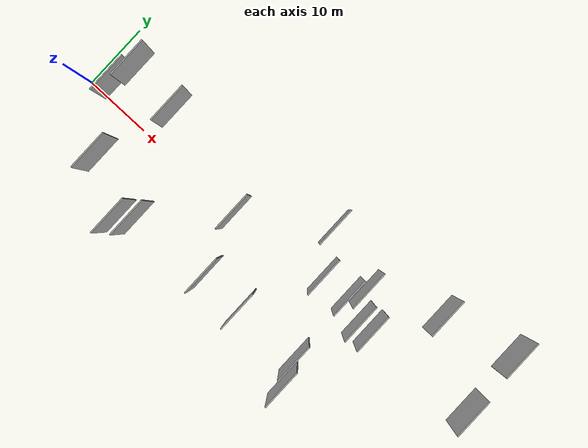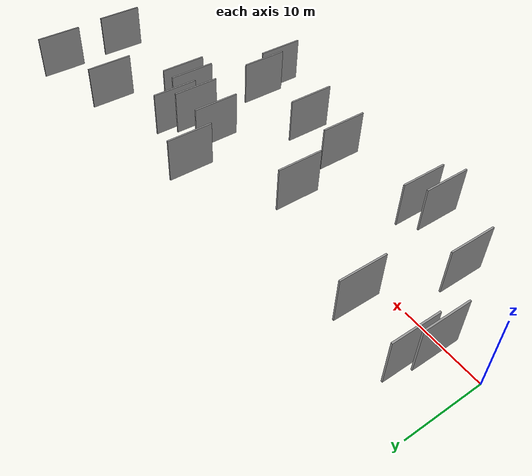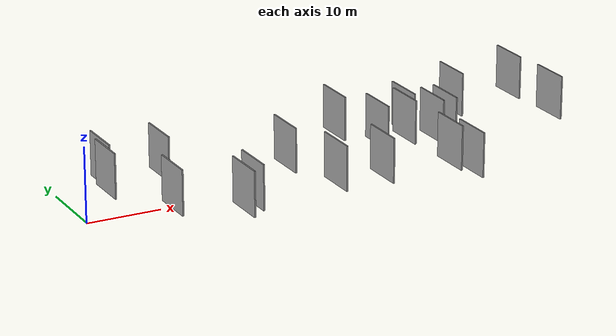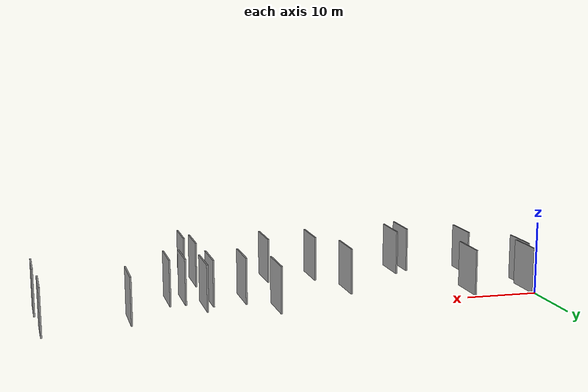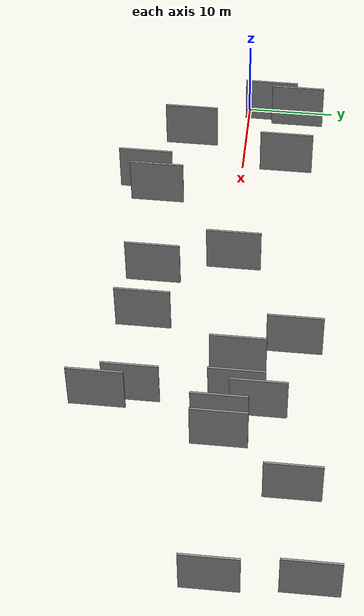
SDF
<sdf version="1.6">
 <world name="default">
  <scene>
   <sky><clouds><speed>12</speed></clouds></sky>
   <ambient>0.4 0.4 0.4 1</ambient>
   <background>0.7 0.7 0.7 1</background>
   <shadows>1</shadows>
  </scene>
  <gravity>0 0 -9.8066</gravity>
  <magnetic_field>6e-06 2.3e-05 -4.2e-05</magnetic_field>
  <physics default="0" name="default_physics" type="ode">
   <ode>
    <solver>
     <type>quick</type>
     <iters>10</iters>
     <sor>1.0</sor>
     <use_dynamic_moi_rescaling>0</use_dynamic_moi_rescaling>
    </solver>
    <constraints>
     <cfm>0</cfm>
     <erp>0.2</erp>
     <contact_max_correcting_vel>100</contact_max_correcting_vel>
     <contact_surface_layer>0.001</contact_surface_layer>
    </constraints>
   </ode>
   <max_step_size>0.004</max_step_size>
   <real_time_factor>1</real_time_factor>
   <real_time_update_rate>250</real_time_update_rate>
  </physics>
  <light name="sun" type="directional">
   <pose>0 0 10 0 0 0</pose>
   <diffuse>0.8 0.8 0.8 1</diffuse>
   <specular>0.2 0.2 0.2 1</specular>
   <attenuation>
    <range>1000</range>
    <constant>0.9</constant>
    <linear>0.01</linear>
    <quadratic>0.001</quadratic>
   </attenuation>
   <direction>-0.5 0.1 -0.9</direction>
  </light>
  <model name="grey_wall_1">
   <static>1</static>
   <pose>38.8019 8.1428 2.5 0.000000 0.000000 1.570796</pose>
   <link name="link">
    <pose>0 0 3.00 0 0 0</pose>
    <collision name="collision"><geometry><box><size>6.00 0.2 6.00</size></box></geometry></collision>
    <visual name="visual">
     <cast_shadows>0</cast_shadows>
     <geometry><box><size>6.00 0.2 6.00</size></box></geometry>
     <material>
      <script>
       <uri>model://grey_wall/materials/scripts</uri>
       <uri>model://grey_wall/materials/textures</uri>
       <name>vrc/grey_wall</name>
      </script>
     </material>
    </visual>
   </link>
  </model>
  <model name="grey_wall_2">
   <static>1</static>
   <pose>67.8202 11.7239 2.5 0.000000 0.000000 1.570796</pose>
   <link name="link">
    <pose>0 0 3.00 0 0 0</pose>
    <collision name="collision"><geometry><box><size>6.00 0.2 6.00</size></box></geometry></collision>
    <visual name="visual">
     <cast_shadows>0</cast_shadows>
     <geometry><box><size>6.00 0.2 6.00</size></box></geometry>
     <material>
      <script>
       <uri>model://grey_wall/materials/scripts</uri>
       <uri>model://grey_wall/materials/textures</uri>
       <name>vrc/grey_wall</name>
      </script>
     </material>
    </visual>
   </link>
  </model>
  <model name="grey_wall_3">
   <static>1</static>
   <pose>27.6856 0.5977 2.5 0.000000 0.000000 1.570796</pose>
   <link name="link">
    <pose>0 0 3.00 0 0 0</pose>
    <collision name="collision"><geometry><box><size>6.00 0.2 6.00</size></box></geometry></collision>
    <visual name="visual">
     <cast_shadows>0</cast_shadows>
     <geometry><box><size>6.00 0.2 6.00</size></box></geometry>
     <material>
      <script>
       <uri>model://grey_wall/materials/scripts</uri>
       <uri>model://grey_wall/materials/textures</uri>
       <name>vrc/grey_wall</name>
      </script>
     </material>
    </visual>
   </link>
  </model>
  <model name="grey_wall_4">
   <static>1</static>
   <pose>46.6783 -8.3228 2.5 0.000000 0.000000 1.570796</pose>
   <link name="link">
    <pose>0 0 3.00 0 0 0</pose>
    <collision name="collision"><geometry><box><size>6.00 0.2 6.00</size></box></geometry></collision>
    <visual name="visual">
     <cast_shadows>0</cast_shadows>
     <geometry><box><size>6.00 0.2 6.00</size></box></geometry>
     <material>
      <script>
       <uri>model://grey_wall/materials/scripts</uri>
       <uri>model://grey_wall/materials/textures</uri>
       <name>vrc/grey_wall</name>
      </script>
     </material>
    </visual>
   </link>
  </model>
  <model name="grey_wall_5">
   <static>1</static>
   <pose>8.8817 -6.0696 2.5 0.000000 0.000000 1.570796</pose>
   <link name="link">
    <pose>0 0 3.00 0 0 0</pose>
    <collision name="collision"><geometry><box><size>6.00 0.2 6.00</size></box></geometry></collision>
    <visual name="visual">
     <cast_shadows>0</cast_shadows>
     <geometry><box><size>6.00 0.2 6.00</size></box></geometry>
     <material>
      <script>
       <uri>model://grey_wall/materials/scripts</uri>
       <uri>model://grey_wall/materials/textures</uri>
       <name>vrc/grey_wall</name>
      </script>
     </material>
    </visual>
   </link>
  </model>
  <model name="grey_wall_6">
   <static>1</static>
   <pose>12.2418 5.2225 2.5 0.000000 0.000000 1.570796</pose>
   <link name="link">
    <pose>0 0 3.00 0 0 0</pose>
    <collision name="collision"><geometry><box><size>6.00 0.2 6.00</size></box></geometry></collision>
    <visual name="visual">
     <cast_shadows>0</cast_shadows>
     <geometry><box><size>6.00 0.2 6.00</size></box></geometry>
     <material>
      <script>
       <uri>model://grey_wall/materials/scripts</uri>
       <uri>model://grey_wall/materials/textures</uri>
       <name>vrc/grey_wall</name>
      </script>
     </material>
    </visual>
   </link>
  </model>
  <model name="grey_wall_7">
   <static>1</static>
   <pose>3.9170 2.8404 2.5 0.000000 0.000000 1.570796</pose>
   <link name="link">
    <pose>0 0 3.00 0 0 0</pose>
    <collision name="collision"><geometry><box><size>6.00 0.2 6.00</size></box></geometry></collision>
    <visual name="visual">
     <cast_shadows>0</cast_shadows>
     <geometry><box><size>6.00 0.2 6.00</size></box></geometry>
     <material>
      <script>
       <uri>model://grey_wall/materials/scripts</uri>
       <uri>model://grey_wall/materials/textures</uri>
       <name>vrc/grey_wall</name>
      </script>
     </material>
    </visual>
   </link>
  </model>
  <model name="grey_wall_8">
   <static>1</static>
   <pose>68.2535 2.0715 2.5 0.000000 0.000000 1.570796</pose>
   <link name="link">
    <pose>0 0 3.00 0 0 0</pose>
    <collision name="collision"><geometry><box><size>6.00 0.2 6.00</size></box></geometry></collision>
    <visual name="visual">
     <cast_shadows>0</cast_shadows>
     <geometry><box><size>6.00 0.2 6.00</size></box></geometry>
     <material>
      <script>
       <uri>model://grey_wall/materials/scripts</uri>
       <uri>model://grey_wall/materials/textures</uri>
       <name>vrc/grey_wall</name>
      </script>
     </material>
    </visual>
   </link>
  </model>
  <model name="grey_wall_9">
   <static>1</static>
   <pose>36.8243 -8.3083 2.5 0.000000 0.000000 1.570796</pose>
   <link name="link">
    <pose>0 0 3.00 0 0 0</pose>
    <collision name="collision"><geometry><box><size>6.00 0.2 6.00</size></box></geometry></collision>
    <visual name="visual">
     <cast_shadows>0</cast_shadows>
     <geometry><box><size>6.00 0.2 6.00</size></box></geometry>
     <material>
      <script>
       <uri>model://grey_wall/materials/scripts</uri>
       <uri>model://grey_wall/materials/textures</uri>
       <name>vrc/grey_wall</name>
      </script>
     </material>
    </visual>
   </link>
  </model>
  <model name="grey_wall_10">
   <static>1</static>
   <pose>47.4307 5.0204 2.5 0.000000 0.000000 1.570796</pose>
   <link name="link">
    <pose>0 0 3.00 0 0 0</pose>
    <collision name="collision"><geometry><box><size>6.00 0.2 6.00</size></box></geometry></collision>
    <visual name="visual">
     <cast_shadows>0</cast_shadows>
     <geometry><box><size>6.00 0.2 6.00</size></box></geometry>
     <material>
      <script>
       <uri>model://grey_wall/materials/scripts</uri>
       <uri>model://grey_wall/materials/textures</uri>
       <name>vrc/grey_wall</name>
      </script>
     </material>
    </visual>
   </link>
  </model>
  <model name="grey_wall_11">
   <static>1</static>
   <pose>42.0297 2.3910 2.5 0.000000 0.000000 1.570796</pose>
   <link name="link">
    <pose>0 0 3.00 0 0 0</pose>
    <collision name="collision"><geometry><box><size>6.00 0.2 6.00</size></box></geometry></collision>
    <visual name="visual">
     <cast_shadows>0</cast_shadows>
     <geometry><box><size>6.00 0.2 6.00</size></box></geometry>
     <material>
      <script>
       <uri>model://grey_wall/materials/scripts</uri>
       <uri>model://grey_wall/materials/textures</uri>
       <name>vrc/grey_wall</name>
      </script>
     </material>
    </visual>
   </link>
  </model>
  <model name="grey_wall_12">
   <static>1</static>
   <pose>4.5498 5.9838 2.5 0.000000 0.000000 1.570796</pose>
   <link name="link">
    <pose>0 0 3.00 0 0 0</pose>
    <collision name="collision"><geometry><box><size>6.00 0.2 6.00</size></box></geometry></collision>
    <visual name="visual">
     <cast_shadows>0</cast_shadows>
     <geometry><box><size>6.00 0.2 6.00</size></box></geometry>
     <material>
      <script>
       <uri>model://grey_wall/materials/scripts</uri>
       <uri>model://grey_wall/materials/textures</uri>
       <name>vrc/grey_wall</name>
      </script>
     </material>
    </visual>
   </link>
  </model>
  <model name="grey_wall_13">
   <static>1</static>
   <pose>47.7464 -11.7925 2.5 0.000000 0.000000 1.570796</pose>
   <link name="link">
    <pose>0 0 3.00 0 0 0</pose>
    <collision name="collision"><geometry><box><size>6.00 0.2 6.00</size></box></geometry></collision>
    <visual name="visual">
     <cast_shadows>0</cast_shadows>
     <geometry><box><size>6.00 0.2 6.00</size></box></geometry>
     <material>
      <script>
       <uri>model://grey_wall/materials/scripts</uri>
       <uri>model://grey_wall/materials/textures</uri>
       <name>vrc/grey_wall</name>
      </script>
     </material>
    </visual>
   </link>
  </model>
  <model name="grey_wall_14">
   <static>1</static>
   <pose>46.2533 2.6578 2.5 0.000000 0.000000 1.570796</pose>
   <link name="link">
    <pose>0 0 3.00 0 0 0</pose>
    <collision name="collision"><geometry><box><size>6.00 0.2 6.00</size></box></geometry></collision>
    <visual name="visual">
     <cast_shadows>0</cast_shadows>
     <geometry><box><size>6.00 0.2 6.00</size></box></geometry>
     <material>
      <script>
       <uri>model://grey_wall/materials/scripts</uri>
       <uri>model://grey_wall/materials/textures</uri>
       <name>vrc/grey_wall</name>
      </script>
     </material>
    </visual>
   </link>
  </model>
  <model name="grey_wall_15">
   <static>1</static>
   <pose>57.2317 9.2502 2.5 0.000000 0.000000 1.570796</pose>
   <link name="link">
    <pose>0 0 3.00 0 0 0</pose>
    <collision name="collision"><geometry><box><size>6.00 0.2 6.00</size></box></geometry></collision>
    <visual name="visual">
     <cast_shadows>0</cast_shadows>
     <geometry><box><size>6.00 0.2 6.00</size></box></geometry>
     <material>
      <script>
       <uri>model://grey_wall/materials/scripts</uri>
       <uri>model://grey_wall/materials/textures</uri>
       <name>vrc/grey_wall</name>
      </script>
     </material>
    </visual>
   </link>
  </model>
  <model name="grey_wall_16">
   <static>1</static>
   <pose>51.5392 1.3216 2.5 0.000000 0.000000 1.570796</pose>
   <link name="link">
    <pose>0 0 3.00 0 0 0</pose>
    <collision name="collision"><geometry><box><size>6.00 0.2 6.00</size></box></geometry></collision>
    <visual name="visual">
     <cast_shadows>0</cast_shadows>
     <geometry><box><size>6.00 0.2 6.00</size></box></geometry>
     <material>
      <script>
       <uri>model://grey_wall/materials/scripts</uri>
       <uri>model://grey_wall/materials/textures</uri>
       <name>vrc/grey_wall</name>
      </script>
     </material>
    </visual>
   </link>
  </model>
  <model name="grey_wall_17">
   <static>1</static>
   <pose>49.5455 1.1834 2.5 0.000000 0.000000 1.570796</pose>
   <link name="link">
    <pose>0 0 3.00 0 0 0</pose>
    <collision name="collision"><geometry><box><size>6.00 0.2 6.00</size></box></geometry></collision>
    <visual name="visual">
     <cast_shadows>0</cast_shadows>
     <geometry><box><size>6.00 0.2 6.00</size></box></geometry>
     <material>
      <script>
       <uri>model://grey_wall/materials/scripts</uri>
       <uri>model://grey_wall/materials/textures</uri>
       <name>vrc/grey_wall</name>
      </script>
     </material>
    </visual>
   </link>
  </model>
  <model name="grey_wall_18">
   <static>1</static>
   <pose>30.3507 -8.0331 2.5 0.000000 0.000000 1.570796</pose>
   <link name="link">
    <pose>0 0 3.00 0 0 0</pose>
    <collision name="collision"><geometry><box><size>6.00 0.2 6.00</size></box></geometry></collision>
    <visual name="visual">
     <cast_shadows>0</cast_shadows>
     <geometry><box><size>6.00 0.2 6.00</size></box></geometry>
     <material>
      <script>
       <uri>model://grey_wall/materials/scripts</uri>
       <uri>model://grey_wall/materials/textures</uri>
       <name>vrc/grey_wall</name>
      </script>
     </material>
    </visual>
   </link>
  </model>
  <model name="grey_wall_19">
   <static>1</static>
   <pose>18.3351 -9.0302 2.5 0.000000 0.000000 1.570796</pose>
   <link name="link">
    <pose>0 0 3.00 0 0 0</pose>
    <collision name="collision"><geometry><box><size>6.00 0.2 6.00</size></box></geometry></collision>
    <visual name="visual">
     <cast_shadows>0</cast_shadows>
     <geometry><box><size>6.00 0.2 6.00</size></box></geometry>
     <material>
      <script>
       <uri>model://grey_wall/materials/scripts</uri>
       <uri>model://grey_wall/materials/textures</uri>
       <name>vrc/grey_wall</name>
      </script>
     </material>
    </visual>
   </link>
  </model>
  <model name="grey_wall_20">
   <static>1</static>
   <pose>16.3726 -10.5062 2.5 0.000000 0.000000 1.570796</pose>
   <link name="link">
    <pose>0 0 3.00 0 0 0</pose>
    <collision name="collision"><geometry><box><size>6.00 0.2 6.00</size></box></geometry></collision>
    <visual name="visual">
     <cast_shadows>0</cast_shadows>
     <geometry><box><size>6.00 0.2 6.00</size></box></geometry>
     <material>
      <script>
       <uri>model://grey_wall/materials/scripts</uri>
       <uri>model://grey_wall/materials/textures</uri>
       <name>vrc/grey_wall</name>
      </script>
     </material>
    </visual>
   </link>
  </model>
 </world>
</sdf>
